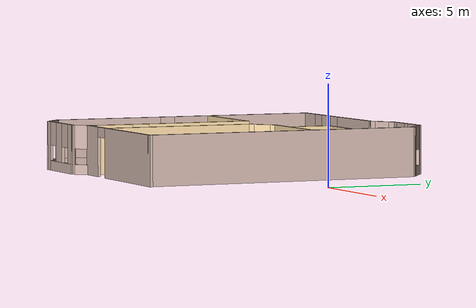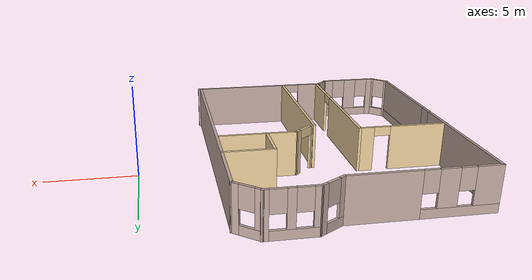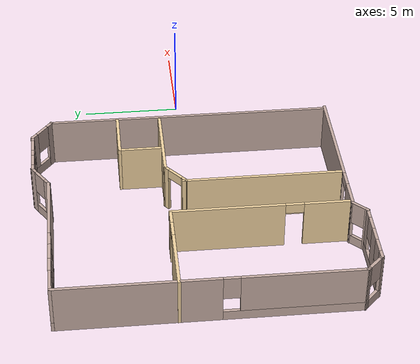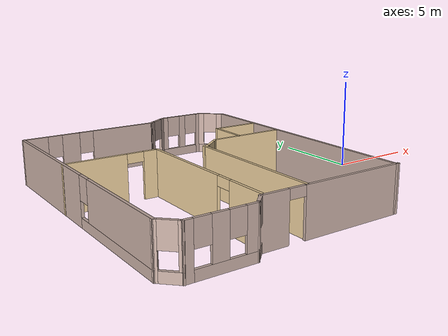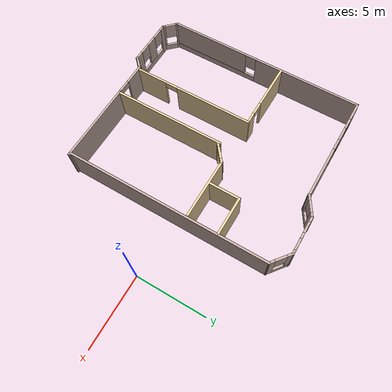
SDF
<?xml version='1.0'?>
<sdf version='1.6'>
  <model name='proj_1_building'>
    <pose frame=''>-10.4083 -0.19591 0 0 -0 0</pose>
    <link name='Wall_1'>
      <pose frame=''>-5.96689 -7.56357 0 0 0 -0.785398</pose>
      <visual name='Wall_1_Visual_0'>
        <pose frame=''>-0.514792 0 1.25 0 -0 0</pose>
        <geometry>
          <box>
            <size>0.220416 0.15 2.5</size>
          </box>
        </geometry>
        <material>
          <script>
            <uri>file://media/materials/scripts/gazebo.material</uri>
            <name>Gazebo/Grey</name>
          </script>
          <ambient>0.760784 0.662745 0.627451 1</ambient>
        </material>
        <meta>
          <layer>0</layer>
        </meta>
      </visual>
      <collision name='Wall_1_Collision_0'>
        <geometry>
          <box>
            <size>0.220416 0.15 2.5</size>
          </box>
        </geometry>
        <pose frame=''>-0.514792 0 1.25 0 -0 0</pose>
      </collision>
      <visual name='Wall_1_Visual_1'>
        <pose frame=''>0.110208 0 0.25 0 -0 0</pose>
        <geometry>
          <box>
            <size>1.02958 0.15 0.5</size>
          </box>
        </geometry>
        <material>
          <script>
            <uri>file://media/materials/scripts/gazebo.material</uri>
            <name>Gazebo/Grey</name>
          </script>
          <ambient>0.760784 0.662745 0.627451 1</ambient>
        </material>
        <meta>
          <layer>0</layer>
        </meta>
      </visual>
      <collision name='Wall_1_Collision_1'>
        <geometry>
          <box>
            <size>1.02958 0.15 0.5</size>
          </box>
        </geometry>
        <pose frame=''>0.110208 0 0.25 0 -0 0</pose>
      </collision>
      <visual name='Wall_1_Visual_2'>
        <pose frame=''>0.510208 0 1.5 0 -0 0</pose>
        <geometry>
          <box>
            <size>0.229584 0.15 2</size>
          </box>
        </geometry>
        <material>
          <script>
            <uri>file://media/materials/scripts/gazebo.material</uri>
            <name>Gazebo/Grey</name>
          </script>
          <ambient>0.760784 0.662745 0.627451 1</ambient>
        </material>
        <meta>
          <layer>0</layer>
        </meta>
      </visual>
      <collision name='Wall_1_Collision_2'>
        <geometry>
          <box>
            <size>0.229584 0.15 2</size>
          </box>
        </geometry>
        <pose frame=''>0.510208 0 1.5 0 -0 0</pose>
      </collision>
      <visual name='Wall_1_Visual_3'>
        <pose frame=''>-0.004584 0 1.9 0 -0 0</pose>
        <geometry>
          <box>
            <size>0.8 0.15 1.2</size>
          </box>
        </geometry>
        <material>
          <script>
            <uri>file://media/materials/scripts/gazebo.material</uri>
            <name>Gazebo/Grey</name>
          </script>
          <ambient>0.760784 0.662745 0.627451 1</ambient>
        </material>
        <meta>
          <layer>0</layer>
        </meta>
      </visual>
      <collision name='Wall_1_Collision_3'>
        <geometry>
          <box>
            <size>0.8 0.15 1.2</size>
          </box>
        </geometry>
        <pose frame=''>-0.004584 0 1.9 0 -0 0</pose>
      </collision>
    </link>
    <link name='Wall_11'>
      <pose frame=''>-2.5558 7.17534 0 0 -0 3.14159</pose>
      <visual name='Wall_11_Visual_0'>
        <pose frame=''>-1.97957 0 1.25 0 -0 0</pose>
        <geometry>
          <box>
            <size>3.79087 0.15 2.5</size>
          </box>
        </geometry>
        <material>
          <script>
            <uri>file://media/materials/scripts/gazebo.material</uri>
            <name>Gazebo/Grey</name>
          </script>
          <ambient>0.760784 0.662745 0.627451 1</ambient>
        </material>
        <meta>
          <layer>0</layer>
        </meta>
      </visual>
      <collision name='Wall_11_Collision_0'>
        <geometry>
          <box>
            <size>3.79087 0.15 2.5</size>
          </box>
        </geometry>
        <pose frame=''>-1.97957 0 1.25 0 -0 0</pose>
      </collision>
      <visual name='Wall_11_Visual_1'>
        <pose frame=''>1.89543 0 0.25 0 -0 0</pose>
        <geometry>
          <box>
            <size>3.95913 0.15 0.5</size>
          </box>
        </geometry>
        <material>
          <script>
            <uri>file://media/materials/scripts/gazebo.material</uri>
            <name>Gazebo/Grey</name>
          </script>
          <ambient>0.760784 0.662745 0.627451 1</ambient>
        </material>
        <meta>
          <layer>0</layer>
        </meta>
      </visual>
      <collision name='Wall_11_Collision_1'>
        <geometry>
          <box>
            <size>3.95913 0.15 0.5</size>
          </box>
        </geometry>
        <pose frame=''>1.89543 0 0.25 0 -0 0</pose>
      </collision>
      <visual name='Wall_11_Visual_2'>
        <pose frame=''>1.21517 0 1.5 0 -0 0</pose>
        <geometry>
          <box>
            <size>0.998599 0.15 2</size>
          </box>
        </geometry>
        <material>
          <script>
            <uri>file://media/materials/scripts/gazebo.material</uri>
            <name>Gazebo/Grey</name>
          </script>
          <ambient>0.760784 0.662745 0.627451 1</ambient>
        </material>
        <meta>
          <layer>0</layer>
        </meta>
      </visual>
      <collision name='Wall_11_Collision_2'>
        <geometry>
          <box>
            <size>0.998599 0.15 2</size>
          </box>
        </geometry>
        <pose frame=''>1.21517 0 1.5 0 -0 0</pose>
      </collision>
      <visual name='Wall_11_Visual_3'>
        <pose frame=''>3.19474 0 1.5 0 -0 0</pose>
        <geometry>
          <box>
            <size>1.36053 0.15 2</size>
          </box>
        </geometry>
        <material>
          <script>
            <uri>file://media/materials/scripts/gazebo.material</uri>
            <name>Gazebo/Grey</name>
          </script>
          <ambient>0.760784 0.662745 0.627451 1</ambient>
        </material>
        <meta>
          <layer>0</layer>
        </meta>
      </visual>
      <collision name='Wall_11_Collision_3'>
        <geometry>
          <box>
            <size>1.36053 0.15 2</size>
          </box>
        </geometry>
        <pose frame=''>3.19474 0 1.5 0 -0 0</pose>
      </collision>
      <visual name='Wall_11_Visual_4'>
        <pose frame=''>0.31587 0 1.9 0 -0 0</pose>
        <geometry>
          <box>
            <size>0.8 0.15 1.2</size>
          </box>
        </geometry>
        <material>
          <script>
            <uri>file://media/materials/scripts/gazebo.material</uri>
            <name>Gazebo/Grey</name>
          </script>
          <ambient>0.760784 0.662745 0.627451 1</ambient>
        </material>
        <meta>
          <layer>0</layer>
        </meta>
      </visual>
      <collision name='Wall_11_Collision_4'>
        <geometry>
          <box>
            <size>0.8 0.15 1.2</size>
          </box>
        </geometry>
        <pose frame=''>0.31587 0 1.9 0 -0 0</pose>
      </collision>
      <visual name='Wall_11_Visual_5'>
        <pose frame=''>2.11447 0 1.9 0 -0 0</pose>
        <geometry>
          <box>
            <size>0.8 0.15 1.2</size>
          </box>
        </geometry>
        <material>
          <script>
            <uri>file://media/materials/scripts/gazebo.material</uri>
            <name>Gazebo/Grey</name>
          </script>
          <ambient>0.760784 0.662745 0.627451 1</ambient>
        </material>
        <meta>
          <layer>0</layer>
        </meta>
      </visual>
      <collision name='Wall_11_Collision_5'>
        <geometry>
          <box>
            <size>0.8 0.15 1.2</size>
          </box>
        </geometry>
        <pose frame=''>2.11447 0 1.9 0 -0 0</pose>
      </collision>
    </link>
    <link name='Wall_12'>
      <pose frame=''>-6.3558 0.000336 0 0 0 -1.5708</pose>
      <visual name='Wall_12_Visual_0'>
        <pose frame=''>-3.3396 0 1.25 0 -0 0</pose>
        <geometry>
          <box>
            <size>7.82081 0.15 2.5</size>
          </box>
        </geometry>
        <material>
          <script>
            <uri>file://media/materials/scripts/gazebo.material</uri>
            <name>Gazebo/Grey</name>
          </script>
          <ambient>0.760784 0.662745 0.627451 1</ambient>
        </material>
        <meta>
          <layer>0</layer>
        </meta>
      </visual>
      <collision name='Wall_12_Collision_0'>
        <geometry>
          <box>
            <size>7.82081 0.15 2.5</size>
          </box>
        </geometry>
        <pose frame=''>-3.3396 0 1.25 0 -0 0</pose>
      </collision>
      <visual name='Wall_12_Visual_1'>
        <pose frame=''>3.9104 0 0.25 0 -0 0</pose>
        <geometry>
          <box>
            <size>6.67919 0.15 0.5</size>
          </box>
        </geometry>
        <material>
          <script>
            <uri>file://media/materials/scripts/gazebo.material</uri>
            <name>Gazebo/Grey</name>
          </script>
          <ambient>0.760784 0.662745 0.627451 1</ambient>
        </material>
        <meta>
          <layer>0</layer>
        </meta>
      </visual>
      <collision name='Wall_12_Collision_1'>
        <geometry>
          <box>
            <size>6.67919 0.15 0.5</size>
          </box>
        </geometry>
        <pose frame=''>3.9104 0 0.25 0 -0 0</pose>
      </collision>
      <visual name='Wall_12_Visual_2'>
        <pose frame=''>4.3104 0 1.5 0 -0 0</pose>
        <geometry>
          <box>
            <size>5.8792 0.15 2</size>
          </box>
        </geometry>
        <material>
          <script>
            <uri>file://media/materials/scripts/gazebo.material</uri>
            <name>Gazebo/Grey</name>
          </script>
          <ambient>0.760784 0.662745 0.627451 1</ambient>
        </material>
        <meta>
          <layer>0</layer>
        </meta>
      </visual>
      <collision name='Wall_12_Collision_2'>
        <geometry>
          <box>
            <size>5.8792 0.15 2</size>
          </box>
        </geometry>
        <pose frame=''>4.3104 0 1.5 0 -0 0</pose>
      </collision>
      <visual name='Wall_12_Visual_3'>
        <pose frame=''>0.970805 0 1.9 0 -0 0</pose>
        <geometry>
          <box>
            <size>0.8 0.15 1.2</size>
          </box>
        </geometry>
        <material>
          <script>
            <uri>file://media/materials/scripts/gazebo.material</uri>
            <name>Gazebo/Grey</name>
          </script>
          <ambient>0.760784 0.662745 0.627451 1</ambient>
        </material>
        <meta>
          <layer>0</layer>
        </meta>
      </visual>
      <collision name='Wall_12_Collision_3'>
        <geometry>
          <box>
            <size>0.8 0.15 1.2</size>
          </box>
        </geometry>
        <pose frame=''>0.970805 0 1.9 0 -0 0</pose>
      </collision>
    </link>
    <link name='Wall_14'>
      <pose frame=''>-1.46933 -2.88614 0 0 -0 1.5708</pose>
      <visual name='Wall_14_Visual_0'>
        <pose frame=''>-3.25326 0 1.25 0 -0 0</pose>
        <geometry>
          <box>
            <size>2.24347 0.15 2.5</size>
          </box>
        </geometry>
        <material>
          <script>
            <uri>file://media/materials/scripts/gazebo.material</uri>
            <name>Gazebo/Grey</name>
          </script>
          <ambient>0.921569 0.807843 0.615686 1</ambient>
        </material>
        <meta>
          <layer>0</layer>
        </meta>
      </visual>
      <collision name='Wall_14_Collision_0'>
        <geometry>
          <box>
            <size>2.24347 0.15 2.5</size>
          </box>
        </geometry>
        <pose frame=''>-3.25326 0 1.25 0 -0 0</pose>
      </collision>
      <visual name='Wall_14_Visual_1'>
        <pose frame=''>1.57174 0 1.25 0 -0 0</pose>
        <geometry>
          <box>
            <size>5.60653 0.15 2.5</size>
          </box>
        </geometry>
        <material>
          <script>
            <uri>file://media/materials/scripts/gazebo.material</uri>
            <name>Gazebo/Grey</name>
          </script>
          <ambient>0.921569 0.807843 0.615686 1</ambient>
        </material>
        <meta>
          <layer>0</layer>
        </meta>
      </visual>
      <collision name='Wall_14_Collision_1'>
        <geometry>
          <box>
            <size>5.60653 0.15 2.5</size>
          </box>
        </geometry>
        <pose frame=''>1.57174 0 1.25 0 -0 0</pose>
      </collision>
      <visual name='Wall_14_Visual_2'>
        <pose frame=''>-1.68153 0 2.25 0 -0 0</pose>
        <geometry>
          <box>
            <size>0.9 0.15 0.5</size>
          </box>
        </geometry>
        <material>
          <script>
            <uri>file://media/materials/scripts/gazebo.material</uri>
            <name>Gazebo/Grey</name>
          </script>
          <ambient>0.921569 0.807843 0.615686 1</ambient>
        </material>
        <meta>
          <layer>0</layer>
        </meta>
      </visual>
      <collision name='Wall_14_Collision_2'>
        <geometry>
          <box>
            <size>0.9 0.15 0.5</size>
          </box>
        </geometry>
        <pose frame=''>-1.68153 0 2.25 0 -0 0</pose>
      </collision>
    </link>
    <link name='Wall_15'>
      <pose frame=''>-3.97166 1.41386 0 0 -0 3.14159</pose>
      <visual name='Wall_15_Visual_0'>
        <pose frame=''>-2.08601 0 1.25 0 -0 0</pose>
        <geometry>
          <box>
            <size>0.771027 0.15 2.5</size>
          </box>
        </geometry>
        <material>
          <script>
            <uri>file://media/materials/scripts/gazebo.material</uri>
            <name>Gazebo/Grey</name>
          </script>
          <ambient>0.921569 0.807843 0.615686 1</ambient>
        </material>
        <meta>
          <layer>0</layer>
        </meta>
      </visual>
      <collision name='Wall_15_Collision_0'>
        <geometry>
          <box>
            <size>0.771027 0.15 2.5</size>
          </box>
        </geometry>
        <pose frame=''>-2.08601 0 1.25 0 -0 0</pose>
      </collision>
      <visual name='Wall_15_Visual_1'>
        <pose frame=''>0.835513 0 1.25 0 -0 0</pose>
        <geometry>
          <box>
            <size>3.27203 0.15 2.5</size>
          </box>
        </geometry>
        <material>
          <script>
            <uri>file://media/materials/scripts/gazebo.material</uri>
            <name>Gazebo/Grey</name>
          </script>
          <ambient>0.921569 0.807843 0.615686 1</ambient>
        </material>
        <meta>
          <layer>0</layer>
        </meta>
      </visual>
      <collision name='Wall_15_Collision_1'>
        <geometry>
          <box>
            <size>3.27203 0.15 2.5</size>
          </box>
        </geometry>
        <pose frame=''>0.835513 0 1.25 0 -0 0</pose>
      </collision>
      <visual name='Wall_15_Visual_2'>
        <pose frame=''>-1.2505 0 2.25 0 -0 0</pose>
        <geometry>
          <box>
            <size>0.9 0.15 0.5</size>
          </box>
        </geometry>
        <material>
          <script>
            <uri>file://media/materials/scripts/gazebo.material</uri>
            <name>Gazebo/Grey</name>
          </script>
          <ambient>0.921569 0.807843 0.615686 1</ambient>
        </material>
        <meta>
          <layer>0</layer>
        </meta>
      </visual>
      <collision name='Wall_15_Collision_2'>
        <geometry>
          <box>
            <size>0.9 0.15 0.5</size>
          </box>
        </geometry>
        <pose frame=''>-1.2505 0 2.25 0 -0 0</pose>
      </collision>
    </link>
    <link name='Wall_19'>
      <pose frame=''>1.42585 0.91926 0 0 0 -2.45593</pose>
      <visual name='Wall_19_Visual_0'>
        <pose frame=''>-0.646286 0 1.25 0 -0 0</pose>
        <geometry>
          <box>
            <size>0.367935 0.15 2.5</size>
          </box>
        </geometry>
        <material>
          <script>
            <uri>file://media/materials/scripts/gazebo.material</uri>
            <name>Gazebo/Grey</name>
          </script>
          <ambient>0.921569 0.807843 0.615686 1</ambient>
        </material>
        <meta>
          <layer>0</layer>
        </meta>
      </visual>
      <collision name='Wall_19_Collision_0'>
        <geometry>
          <box>
            <size>0.367935 0.15 2.5</size>
          </box>
        </geometry>
        <pose frame=''>-0.646286 0 1.25 0 -0 0</pose>
      </collision>
      <visual name='Wall_19_Visual_1'>
        <pose frame=''>0.633967 0 1.25 0 -0 0</pose>
        <geometry>
          <box>
            <size>0.392573 0.15 2.5</size>
          </box>
        </geometry>
        <material>
          <script>
            <uri>file://media/materials/scripts/gazebo.material</uri>
            <name>Gazebo/Grey</name>
          </script>
          <ambient>0.921569 0.807843 0.615686 1</ambient>
        </material>
        <meta>
          <layer>0</layer>
        </meta>
      </visual>
      <collision name='Wall_19_Collision_1'>
        <geometry>
          <box>
            <size>0.392573 0.15 2.5</size>
          </box>
        </geometry>
        <pose frame=''>0.633967 0 1.25 0 -0 0</pose>
      </collision>
      <visual name='Wall_19_Visual_2'>
        <pose frame=''>-0.012319 0 2.25 0 -0 0</pose>
        <geometry>
          <box>
            <size>0.9 0.15 0.5</size>
          </box>
        </geometry>
        <material>
          <script>
            <uri>file://media/materials/scripts/gazebo.material</uri>
            <name>Gazebo/Grey</name>
          </script>
          <ambient>0.921569 0.807843 0.615686 1</ambient>
        </material>
        <meta>
          <layer>0</layer>
        </meta>
      </visual>
      <collision name='Wall_19_Collision_2'>
        <geometry>
          <box>
            <size>0.9 0.15 0.5</size>
          </box>
        </geometry>
        <pose frame=''>-0.012319 0 2.25 0 -0 0</pose>
      </collision>
    </link>
    <link name='Wall_2'>
      <pose frame=''>-3.90298 -7.95248 0 0 -0 0</pose>
      <visual name='Wall_2_Visual_0'>
        <pose frame=''>-1.51154 0 1.25 0 -0 0</pose>
        <geometry>
          <box>
            <size>0.476912 0.15 2.5</size>
          </box>
        </geometry>
        <material>
          <script>
            <uri>file://media/materials/scripts/gazebo.material</uri>
            <name>Gazebo/Grey</name>
          </script>
          <ambient>0.760784 0.662745 0.627451 1</ambient>
        </material>
        <meta>
          <layer>0</layer>
        </meta>
      </visual>
      <collision name='Wall_2_Collision_0'>
        <geometry>
          <box>
            <size>0.476912 0.15 2.5</size>
          </box>
        </geometry>
        <pose frame=''>-1.51154 0 1.25 0 -0 0</pose>
      </collision>
      <visual name='Wall_2_Visual_1'>
        <pose frame=''>0.238456 0 0.25 0 -0 0</pose>
        <geometry>
          <box>
            <size>3.02309 0.15 0.5</size>
          </box>
        </geometry>
        <material>
          <script>
            <uri>file://media/materials/scripts/gazebo.material</uri>
            <name>Gazebo/Grey</name>
          </script>
          <ambient>0.760784 0.662745 0.627451 1</ambient>
        </material>
        <meta>
          <layer>0</layer>
        </meta>
      </visual>
      <collision name='Wall_2_Collision_1'>
        <geometry>
          <box>
            <size>3.02309 0.15 0.5</size>
          </box>
        </geometry>
        <pose frame=''>0.238456 0 0.25 0 -0 0</pose>
      </collision>
      <visual name='Wall_2_Visual_2'>
        <pose frame=''>-0.079588 0 1.5 0 -0 0</pose>
        <geometry>
          <box>
            <size>0.787 0.15 2</size>
          </box>
        </geometry>
        <material>
          <script>
            <uri>file://media/materials/scripts/gazebo.material</uri>
            <name>Gazebo/Grey</name>
          </script>
          <ambient>0.760784 0.662745 0.627451 1</ambient>
        </material>
        <meta>
          <layer>0</layer>
        </meta>
      </visual>
      <collision name='Wall_2_Collision_2'>
        <geometry>
          <box>
            <size>0.787 0.15 2</size>
          </box>
        </geometry>
        <pose frame=''>-0.079588 0 1.5 0 -0 0</pose>
      </collision>
      <visual name='Wall_2_Visual_3'>
        <pose frame=''>1.43196 0 1.5 0 -0 0</pose>
        <geometry>
          <box>
            <size>0.636088 0.15 2</size>
          </box>
        </geometry>
        <material>
          <script>
            <uri>file://media/materials/scripts/gazebo.material</uri>
            <name>Gazebo/Grey</name>
          </script>
          <ambient>0.760784 0.662745 0.627451 1</ambient>
        </material>
        <meta>
          <layer>0</layer>
        </meta>
      </visual>
      <collision name='Wall_2_Collision_3'>
        <geometry>
          <box>
            <size>0.636088 0.15 2</size>
          </box>
        </geometry>
        <pose frame=''>1.43196 0 1.5 0 -0 0</pose>
      </collision>
      <visual name='Wall_2_Visual_4'>
        <pose frame=''>-0.873088 0 1.9 0 -0 0</pose>
        <geometry>
          <box>
            <size>0.8 0.15 1.2</size>
          </box>
        </geometry>
        <material>
          <script>
            <uri>file://media/materials/scripts/gazebo.material</uri>
            <name>Gazebo/Grey</name>
          </script>
          <ambient>0.760784 0.662745 0.627451 1</ambient>
        </material>
        <meta>
          <layer>0</layer>
        </meta>
      </visual>
      <collision name='Wall_2_Collision_4'>
        <geometry>
          <box>
            <size>0.8 0.15 1.2</size>
          </box>
        </geometry>
        <pose frame=''>-0.873088 0 1.9 0 -0 0</pose>
      </collision>
      <visual name='Wall_2_Visual_5'>
        <pose frame=''>0.713912 0 1.9 0 -0 0</pose>
        <geometry>
          <box>
            <size>0.8 0.15 1.2</size>
          </box>
        </geometry>
        <material>
          <script>
            <uri>file://media/materials/scripts/gazebo.material</uri>
            <name>Gazebo/Grey</name>
          </script>
          <ambient>0.760784 0.662745 0.627451 1</ambient>
        </material>
        <meta>
          <layer>0</layer>
        </meta>
      </visual>
      <collision name='Wall_2_Collision_5'>
        <geometry>
          <box>
            <size>0.8 0.15 1.2</size>
          </box>
        </geometry>
        <pose frame=''>0.713912 0 1.9 0 -0 0</pose>
      </collision>
    </link>
    <link name='Wall_20'>
      <collision name='Wall_20_Collision'>
        <geometry>
          <box>
            <size>8 0.15 2.5</size>
          </box>
        </geometry>
        <pose frame=''>0 0 1.25 0 -0 0</pose>
      </collision>
      <visual name='Wall_20_Visual'>
        <pose frame=''>0 0 1.25 0 -0 0</pose>
        <geometry>
          <box>
            <size>8 0.15 2.5</size>
          </box>
        </geometry>
        <material>
          <script>
            <uri>file://media/materials/scripts/gazebo.material</uri>
            <name>Gazebo/Grey</name>
          </script>
          <ambient>0.921569 0.807843 0.615686 1</ambient>
        </material>
        <meta>
          <layer>0</layer>
        </meta>
      </visual>
      <pose frame=''>0.841285 -3.34324 0 0 0 -1.5708</pose>
    </link>
    <link name='Wall_3'>
      <pose frame=''>-1.92746 -7.65196 0 0 -0 0.785398</pose>
      <visual name='Wall_3_Visual_0'>
        <pose frame=''>-0.404079 0 1.25 0 -0 0</pose>
        <geometry>
          <box>
            <size>0.191842 0.15 2.5</size>
          </box>
        </geometry>
        <material>
          <script>
            <uri>file://media/materials/scripts/gazebo.material</uri>
            <name>Gazebo/Grey</name>
          </script>
          <ambient>0.760784 0.662745 0.627451 1</ambient>
        </material>
        <meta>
          <layer>0</layer>
        </meta>
      </visual>
      <collision name='Wall_3_Collision_0'>
        <geometry>
          <box>
            <size>0.191842 0.15 2.5</size>
          </box>
        </geometry>
        <pose frame=''>-0.404079 0 1.25 0 -0 0</pose>
      </collision>
      <visual name='Wall_3_Visual_1'>
        <pose frame=''>0.095921 0 0.25 0 -0 0</pose>
        <geometry>
          <box>
            <size>0.808158 0.15 0.5</size>
          </box>
        </geometry>
        <material>
          <script>
            <uri>file://media/materials/scripts/gazebo.material</uri>
            <name>Gazebo/Grey</name>
          </script>
          <ambient>0.760784 0.662745 0.627451 1</ambient>
        </material>
        <meta>
          <layer>0</layer>
        </meta>
      </visual>
      <collision name='Wall_3_Collision_1'>
        <geometry>
          <box>
            <size>0.808158 0.15 0.5</size>
          </box>
        </geometry>
        <pose frame=''>0.095921 0 0.25 0 -0 0</pose>
      </collision>
      <visual name='Wall_3_Visual_2'>
        <pose frame=''>0.495921 0 1.5 0 -0 0</pose>
        <geometry>
          <box>
            <size>0.008158 0.15 2</size>
          </box>
        </geometry>
        <material>
          <script>
            <uri>file://media/materials/scripts/gazebo.material</uri>
            <name>Gazebo/Grey</name>
          </script>
          <ambient>0.760784 0.662745 0.627451 1</ambient>
        </material>
        <meta>
          <layer>0</layer>
        </meta>
      </visual>
      <collision name='Wall_3_Collision_2'>
        <geometry>
          <box>
            <size>0.008158 0.15 2</size>
          </box>
        </geometry>
        <pose frame=''>0.495921 0 1.5 0 -0 0</pose>
      </collision>
      <visual name='Wall_3_Visual_3'>
        <pose frame=''>0.091842 0 1.9 0 -0 0</pose>
        <geometry>
          <box>
            <size>0.8 0.15 1.2</size>
          </box>
        </geometry>
        <material>
          <script>
            <uri>file://media/materials/scripts/gazebo.material</uri>
            <name>Gazebo/Grey</name>
          </script>
          <ambient>0.760784 0.662745 0.627451 1</ambient>
        </material>
        <meta>
          <layer>0</layer>
        </meta>
      </visual>
      <collision name='Wall_3_Collision_3'>
        <geometry>
          <box>
            <size>0.8 0.15 1.2</size>
          </box>
        </geometry>
        <pose frame=''>0.091842 0 1.9 0 -0 0</pose>
      </collision>
    </link>
    <link name='Wall_30'>
      <collision name='Wall_30_Collision'>
        <geometry>
          <box>
            <size>2.75 0.15 2.5</size>
          </box>
        </geometry>
        <pose frame=''>0 0 1.25 0 -0 0</pose>
      </collision>
      <visual name='Wall_30_Visual'>
        <pose frame=''>0 0 1.25 0 -0 0</pose>
        <geometry>
          <box>
            <size>2.75 0.15 2.5</size>
          </box>
        </geometry>
        <material>
          <script>
            <uri>file://media/materials/scripts/gazebo.material</uri>
            <name>Gazebo/Grey</name>
          </script>
          <ambient>0.921569 0.807843 0.615686 1</ambient>
        </material>
        <meta>
          <layer>0</layer>
        </meta>
      </visual>
      <pose frame=''>4.92713 3.57893 0 0 -0 3.14159</pose>
    </link>
    <link name='Wall_33'>
      <collision name='Wall_33_Collision'>
        <geometry>
          <box>
            <size>4.25 0.15 2.5</size>
          </box>
        </geometry>
        <pose frame=''>0 0 1.25 0 -0 0</pose>
      </collision>
      <visual name='Wall_33_Visual'>
        <pose frame=''>0 0 1.25 0 -0 0</pose>
        <geometry>
          <box>
            <size>4.25 0.15 2.5</size>
          </box>
        </geometry>
        <material>
          <script>
            <uri>file://media/materials/scripts/gazebo.material</uri>
            <name>Gazebo/Grey</name>
          </script>
          <ambient>0.921569 0.807843 0.615686 1</ambient>
        </material>
        <meta>
          <layer>0</layer>
        </meta>
      </visual>
      <pose frame=''>4.06042 1.39748 0 0 -0 0</pose>
    </link>
    <link name='Wall_35'>
      <collision name='Wall_35_Collision'>
        <geometry>
          <box>
            <size>2.25 0.15 2.5</size>
          </box>
        </geometry>
        <pose frame=''>0 0 1.25 0 -0 0</pose>
      </collision>
      <visual name='Wall_35_Visual'>
        <pose frame=''>0 0 1.25 0 -0 0</pose>
        <geometry>
          <box>
            <size>2.25 0.15 2.5</size>
          </box>
        </geometry>
        <material>
          <script>
            <uri>file://media/materials/scripts/gazebo.material</uri>
            <name>Gazebo/Grey</name>
          </script>
          <ambient>0.921569 0.807843 0.615686 1</ambient>
        </material>
        <meta>
          <layer>0</layer>
        </meta>
      </visual>
      <pose frame=''>3.62713 2.52893 0 0 0 -1.5708</pose>
    </link>
    <link name='Wall_39'>
      <pose frame=''>5.6821 7.47586 0 0 -0 2.46876</pose>
      <visual name='Wall_39_Visual_0'>
        <pose frame=''>-0.614369 0 1.25 0 -0 0</pose>
        <geometry>
          <box>
            <size>0.453024 0.15 2.5</size>
          </box>
        </geometry>
        <material>
          <script>
            <uri>file://media/materials/scripts/gazebo.material</uri>
            <name>Gazebo/Grey</name>
          </script>
          <ambient>0.760784 0.662745 0.627451 1</ambient>
        </material>
        <meta>
          <layer>0</layer>
        </meta>
      </visual>
      <collision name='Wall_39_Collision_0'>
        <geometry>
          <box>
            <size>0.453024 0.15 2.5</size>
          </box>
        </geometry>
        <pose frame=''>-0.614369 0 1.25 0 -0 0</pose>
      </collision>
      <visual name='Wall_39_Visual_1'>
        <pose frame=''>0.226512 0 0.25 0 -0 0</pose>
        <geometry>
          <box>
            <size>1.22874 0.15 0.5</size>
          </box>
        </geometry>
        <material>
          <script>
            <uri>file://media/materials/scripts/gazebo.material</uri>
            <name>Gazebo/Grey</name>
          </script>
          <ambient>0.760784 0.662745 0.627451 1</ambient>
        </material>
        <meta>
          <layer>0</layer>
        </meta>
      </visual>
      <collision name='Wall_39_Collision_1'>
        <geometry>
          <box>
            <size>1.22874 0.15 0.5</size>
          </box>
        </geometry>
        <pose frame=''>0.226512 0 0.25 0 -0 0</pose>
      </collision>
      <visual name='Wall_39_Visual_2'>
        <pose frame=''>0.626512 0 1.5 0 -0 0</pose>
        <geometry>
          <box>
            <size>0.428738 0.15 2</size>
          </box>
        </geometry>
        <material>
          <script>
            <uri>file://media/materials/scripts/gazebo.material</uri>
            <name>Gazebo/Grey</name>
          </script>
          <ambient>0.760784 0.662745 0.627451 1</ambient>
        </material>
        <meta>
          <layer>0</layer>
        </meta>
      </visual>
      <collision name='Wall_39_Collision_2'>
        <geometry>
          <box>
            <size>0.428738 0.15 2</size>
          </box>
        </geometry>
        <pose frame=''>0.626512 0 1.5 0 -0 0</pose>
      </collision>
      <visual name='Wall_39_Visual_3'>
        <pose frame=''>0.012143 0 1.9 0 -0 0</pose>
        <geometry>
          <box>
            <size>0.8 0.15 1.2</size>
          </box>
        </geometry>
        <material>
          <script>
            <uri>file://media/materials/scripts/gazebo.material</uri>
            <name>Gazebo/Grey</name>
          </script>
          <ambient>0.760784 0.662745 0.627451 1</ambient>
        </material>
        <meta>
          <layer>0</layer>
        </meta>
      </visual>
      <collision name='Wall_39_Collision_3'>
        <geometry>
          <box>
            <size>0.8 0.15 1.2</size>
          </box>
        </geometry>
        <pose frame=''>0.012143 0 1.9 0 -0 0</pose>
      </collision>
    </link>
    <link name='Wall_4'>
      <pose frame=''>2.37996 -7.35144 0 0 -0 0</pose>
      <visual name='Wall_4_Visual_0'>
        <pose frame=''>-3.32654 0 1.25 0 -0 0</pose>
        <geometry>
          <box>
            <size>1.51073 0.15 2.5</size>
          </box>
        </geometry>
        <material>
          <script>
            <uri>file://media/materials/scripts/gazebo.material</uri>
            <name>Gazebo/Grey</name>
          </script>
          <ambient>0.760784 0.662745 0.627451 1</ambient>
        </material>
        <meta>
          <layer>0</layer>
        </meta>
      </visual>
      <collision name='Wall_4_Collision_0'>
        <geometry>
          <box>
            <size>1.51073 0.15 2.5</size>
          </box>
        </geometry>
        <pose frame=''>-3.32654 0 1.25 0 -0 0</pose>
      </collision>
      <visual name='Wall_4_Visual_1'>
        <pose frame=''>1.20536 0 1.25 0 -0 0</pose>
        <geometry>
          <box>
            <size>5.75307 0.15 2.5</size>
          </box>
        </geometry>
        <material>
          <script>
            <uri>file://media/materials/scripts/gazebo.material</uri>
            <name>Gazebo/Grey</name>
          </script>
          <ambient>0.760784 0.662745 0.627451 1</ambient>
        </material>
        <meta>
          <layer>0</layer>
        </meta>
      </visual>
      <collision name='Wall_4_Collision_1'>
        <geometry>
          <box>
            <size>5.75307 0.15 2.5</size>
          </box>
        </geometry>
        <pose frame=''>1.20536 0 1.25 0 -0 0</pose>
      </collision>
      <visual name='Wall_4_Visual_2'>
        <pose frame=''>-2.12118 0 2.25 0 -0 0</pose>
        <geometry>
          <box>
            <size>0.9 0.15 0.5</size>
          </box>
        </geometry>
        <material>
          <script>
            <uri>file://media/materials/scripts/gazebo.material</uri>
            <name>Gazebo/Grey</name>
          </script>
          <ambient>0.760784 0.662745 0.627451 1</ambient>
        </material>
        <meta>
          <layer>0</layer>
        </meta>
      </visual>
      <collision name='Wall_4_Collision_2'>
        <geometry>
          <box>
            <size>0.9 0.15 0.5</size>
          </box>
        </geometry>
        <pose frame=''>-2.12118 0 2.25 0 -0 0</pose>
      </collision>
    </link>
    <link name='Wall_40'>
      <pose frame=''>3.81354 7.95315 0 0 -0 3.14159</pose>
      <visual name='Wall_40_Visual_0'>
        <pose frame=''>-1.19364 0 1.25 0 -0 0</pose>
        <geometry>
          <box>
            <size>0.362723 0.15 2.5</size>
          </box>
        </geometry>
        <material>
          <script>
            <uri>file://media/materials/scripts/gazebo.material</uri>
            <name>Gazebo/Grey</name>
          </script>
          <ambient>0.760784 0.662745 0.627451 1</ambient>
        </material>
        <meta>
          <layer>0</layer>
        </meta>
      </visual>
      <collision name='Wall_40_Collision_0'>
        <geometry>
          <box>
            <size>0.362723 0.15 2.5</size>
          </box>
        </geometry>
        <pose frame=''>-1.19364 0 1.25 0 -0 0</pose>
      </collision>
      <visual name='Wall_40_Visual_1'>
        <pose frame=''>0.181361 0 0.25 0 -0 0</pose>
        <geometry>
          <box>
            <size>2.38728 0.15 0.5</size>
          </box>
        </geometry>
        <material>
          <script>
            <uri>file://media/materials/scripts/gazebo.material</uri>
            <name>Gazebo/Grey</name>
          </script>
          <ambient>0.760784 0.662745 0.627451 1</ambient>
        </material>
        <meta>
          <layer>0</layer>
        </meta>
      </visual>
      <collision name='Wall_40_Collision_1'>
        <geometry>
          <box>
            <size>2.38728 0.15 0.5</size>
          </box>
        </geometry>
        <pose frame=''>0.181361 0 0.25 0 -0 0</pose>
      </collision>
      <visual name='Wall_40_Visual_2'>
        <pose frame=''>-0.003927 0 1.5 0 -0 0</pose>
        <geometry>
          <box>
            <size>0.4167 0.15 2</size>
          </box>
        </geometry>
        <material>
          <script>
            <uri>file://media/materials/scripts/gazebo.material</uri>
            <name>Gazebo/Grey</name>
          </script>
          <ambient>0.760784 0.662745 0.627451 1</ambient>
        </material>
        <meta>
          <layer>0</layer>
        </meta>
      </visual>
      <collision name='Wall_40_Collision_2'>
        <geometry>
          <box>
            <size>0.4167 0.15 2</size>
          </box>
        </geometry>
        <pose frame=''>-0.003927 0 1.5 0 -0 0</pose>
      </collision>
      <visual name='Wall_40_Visual_3'>
        <pose frame=''>1.18971 0 1.5 0 -0 0</pose>
        <geometry>
          <box>
            <size>0.370577 0.15 2</size>
          </box>
        </geometry>
        <material>
          <script>
            <uri>file://media/materials/scripts/gazebo.material</uri>
            <name>Gazebo/Grey</name>
          </script>
          <ambient>0.760784 0.662745 0.627451 1</ambient>
        </material>
        <meta>
          <layer>0</layer>
        </meta>
      </visual>
      <collision name='Wall_40_Collision_3'>
        <geometry>
          <box>
            <size>0.370577 0.15 2</size>
          </box>
        </geometry>
        <pose frame=''>1.18971 0 1.5 0 -0 0</pose>
      </collision>
      <visual name='Wall_40_Visual_4'>
        <pose frame=''>-0.612277 0 1.9 0 -0 0</pose>
        <geometry>
          <box>
            <size>0.8 0.15 1.2</size>
          </box>
        </geometry>
        <material>
          <script>
            <uri>file://media/materials/scripts/gazebo.material</uri>
            <name>Gazebo/Grey</name>
          </script>
          <ambient>0.760784 0.662745 0.627451 1</ambient>
        </material>
        <meta>
          <layer>0</layer>
        </meta>
      </visual>
      <collision name='Wall_40_Collision_4'>
        <geometry>
          <box>
            <size>0.8 0.15 1.2</size>
          </box>
        </geometry>
        <pose frame=''>-0.612277 0 1.9 0 -0 0</pose>
      </collision>
      <visual name='Wall_40_Visual_5'>
        <pose frame=''>0.604423 0 1.9 0 -0 0</pose>
        <geometry>
          <box>
            <size>0.8 0.15 1.2</size>
          </box>
        </geometry>
        <material>
          <script>
            <uri>file://media/materials/scripts/gazebo.material</uri>
            <name>Gazebo/Grey</name>
          </script>
          <ambient>0.760784 0.662745 0.627451 1</ambient>
        </material>
        <meta>
          <layer>0</layer>
        </meta>
      </visual>
      <collision name='Wall_40_Collision_5'>
        <geometry>
          <box>
            <size>0.8 0.15 1.2</size>
          </box>
        </geometry>
        <pose frame=''>0.604423 0 1.9 0 -0 0</pose>
      </collision>
    </link>
    <link name='Wall_41'>
      <pose frame=''>1.86367 7.56424 0 0 0 -2.58097</pose>
      <visual name='Wall_41_Visual_0'>
        <pose frame=''>-0.603075 0 1.25 0 -0 0</pose>
        <geometry>
          <box>
            <size>0.4067 0.15 2.5</size>
          </box>
        </geometry>
        <material>
          <script>
            <uri>file://media/materials/scripts/gazebo.material</uri>
            <name>Gazebo/Grey</name>
          </script>
          <ambient>0.760784 0.662745 0.627451 1</ambient>
        </material>
        <meta>
          <layer>0</layer>
        </meta>
      </visual>
      <collision name='Wall_41_Collision_0'>
        <geometry>
          <box>
            <size>0.4067 0.15 2.5</size>
          </box>
        </geometry>
        <pose frame=''>-0.603075 0 1.25 0 -0 0</pose>
      </collision>
      <visual name='Wall_41_Visual_1'>
        <pose frame=''>0.20335 0 0.25 0 -0 0</pose>
        <geometry>
          <box>
            <size>1.20615 0.15 0.5</size>
          </box>
        </geometry>
        <material>
          <script>
            <uri>file://media/materials/scripts/gazebo.material</uri>
            <name>Gazebo/Grey</name>
          </script>
          <ambient>0.760784 0.662745 0.627451 1</ambient>
        </material>
        <meta>
          <layer>0</layer>
        </meta>
      </visual>
      <collision name='Wall_41_Collision_1'>
        <geometry>
          <box>
            <size>1.20615 0.15 0.5</size>
          </box>
        </geometry>
        <pose frame=''>0.20335 0 0.25 0 -0 0</pose>
      </collision>
      <visual name='Wall_41_Visual_2'>
        <pose frame=''>0.60335 0 1.5 0 -0 0</pose>
        <geometry>
          <box>
            <size>0.406151 0.15 2</size>
          </box>
        </geometry>
        <material>
          <script>
            <uri>file://media/materials/scripts/gazebo.material</uri>
            <name>Gazebo/Grey</name>
          </script>
          <ambient>0.760784 0.662745 0.627451 1</ambient>
        </material>
        <meta>
          <layer>0</layer>
        </meta>
      </visual>
      <collision name='Wall_41_Collision_2'>
        <geometry>
          <box>
            <size>0.406151 0.15 2</size>
          </box>
        </geometry>
        <pose frame=''>0.60335 0 1.5 0 -0 0</pose>
      </collision>
      <visual name='Wall_41_Visual_3'>
        <pose frame=''>0.000275 0 1.9 0 -0 0</pose>
        <geometry>
          <box>
            <size>0.8 0.15 1.2</size>
          </box>
        </geometry>
        <material>
          <script>
            <uri>file://media/materials/scripts/gazebo.material</uri>
            <name>Gazebo/Grey</name>
          </script>
          <ambient>0.760784 0.662745 0.627451 1</ambient>
        </material>
        <meta>
          <layer>0</layer>
        </meta>
      </visual>
      <collision name='Wall_41_Collision_3'>
        <geometry>
          <box>
            <size>0.8 0.15 1.2</size>
          </box>
        </geometry>
        <pose frame=''>0.000275 0 1.9 0 -0 0</pose>
      </collision>
    </link>
    <link name='Wall_5'>
      <collision name='Wall_5_Collision'>
        <geometry>
          <box>
            <size>14.5 0.15 2.5</size>
          </box>
        </geometry>
        <pose frame=''>0 0 1.25 0 -0 0</pose>
      </collision>
      <visual name='Wall_5_Visual'>
        <pose frame=''>0 0 1.25 0 -0 0</pose>
        <geometry>
          <box>
            <size>14.5 0.15 2.5</size>
          </box>
        </geometry>
        <material>
          <script>
            <uri>file://media/materials/scripts/gazebo.material</uri>
            <name>Gazebo/Grey</name>
          </script>
          <ambient>0.760784 0.662745 0.627451 1</ambient>
        </material>
        <meta>
          <layer>0</layer>
        </meta>
      </visual>
      <pose frame=''>6.28106 -0.176441 0 0 -0 1.5708</pose>
    </link>
    <static>1</static>
  </model>
</sdf>
